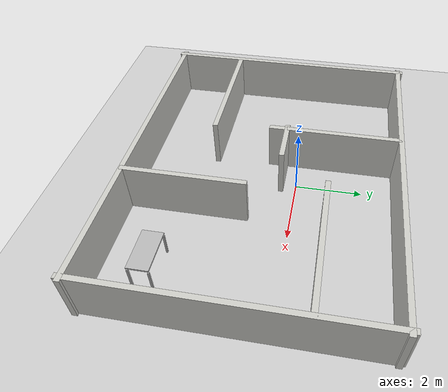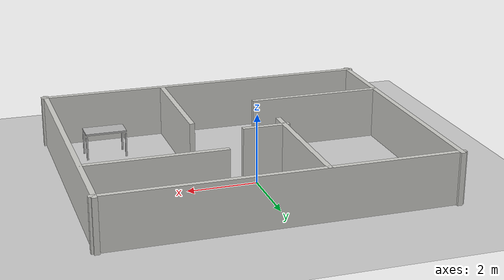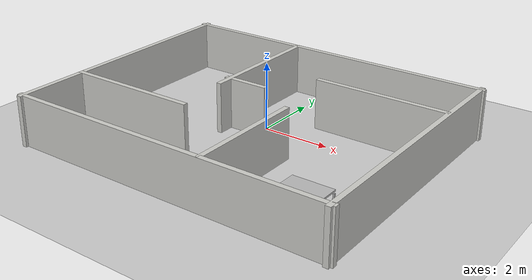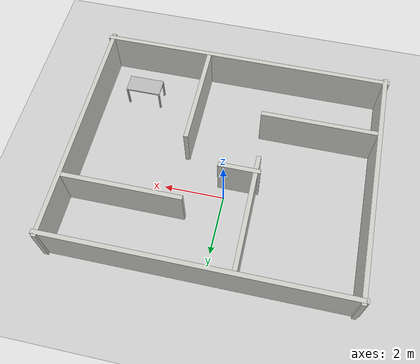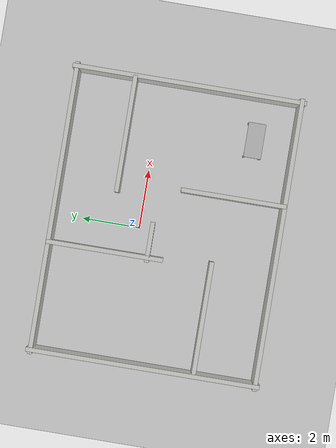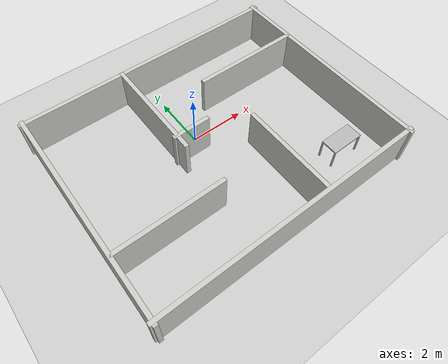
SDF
<sdf version="1.7">
 <world name="default">
  <light name="sun" type="directional">
   <pose>0 0 10 0 -0 0</pose>
   <diffuse>0.8 0.8 0.8 1</diffuse>
   <specular>0.2 0.2 0.2 1</specular>
   <attenuation>
    <range>1000</range>
    <constant>0.9</constant>
    <linear>0.01</linear>
    <quadratic>0.001</quadratic>
   </attenuation>
   <direction>-0.5 0.1 -0.9</direction>
   <spot><inner_angle>0</inner_angle><outer_angle>0</outer_angle><falloff>0</falloff></spot>
  </light>
  <model name="ground_plane">
   <static>1</static>
   <link name="link">
    <collision name="collision">
     <geometry><plane><normal>0 0 1</normal><size>100 100</size></plane></geometry>
     <surface>
      <contact><collide_bitmask>65535</collide_bitmask></contact>
      <friction><ode><mu>100</mu><mu2>50</mu2></ode></friction>
     </surface>
    </collision>
    <visual name="visual">
     <cast_shadows>0</cast_shadows>
     <geometry><plane><normal>0 0 1</normal><size>100 100</size></plane></geometry>
     <material>
      <script><uri>file://media/materials/scripts/gazebo.material</uri><name>Gazebo/Grey</name></script>
     </material>
    </visual>
   </link>
  </model>
  <gravity>0 0 -9.8</gravity>
  <magnetic_field>6e-06 2.3e-05 -4.2e-05</magnetic_field>
  <atmosphere type="adiabatic"/>
  <physics type="ode">
   <max_step_size>0.001</max_step_size>
   <real_time_factor>1</real_time_factor>
   <real_time_update_rate>1000</real_time_update_rate>
  </physics>
  <scene><ambient>0.4 0.4 0.4 1</ambient><background>0.7 0.7 0.7 1</background><shadows>1</shadows></scene>
  <spherical_coordinates>
   <surface_model>EARTH_WGS84</surface_model>
   <latitude_deg>0</latitude_deg>
   <longitude_deg>0</longitude_deg>
   <elevation>0</elevation>
   <heading_deg>0</heading_deg>
  </spherical_coordinates>
  <model name="bnt_partition1">
   <pose>0.200898 -0.36337 0 0 -0 0</pose>
   <link name="Wall_1">
    <collision name="Wall_1_Collision">
     <geometry><box><size>7.55 0.148333 1.5</size></box></geometry>
     <pose>0 0 0.75 0 -0 0</pose>
    </collision>
    <visual name="Wall_1_Visual">
     <pose>0 0 0.75 0 -0 0</pose>
     <geometry><box><size>8 0.15 1.5</size></box></geometry>
     <material>
      <script><uri>file://media/materials/scripts/gazebo.material</uri><name>Gazebo/CeilingTiled</name></script>
      <ambient>1 1 1 1</ambient>
     </material>
     <meta><layer>0</layer></meta>
    </visual>
    <pose>-4.855 -0.535 0 0 -0 -1.5708</pose>
   </link>
   <link name="Wall_11">
    <collision name="Wall_11_Collision">
     <geometry><box><size>3.704584 0.15 1.5</size></box></geometry>
     <pose>0 0 0.75 0 -0 0</pose>
    </collision>
    <visual name="Wall_11_Visual">
     <pose>0 0 0.75 0 -0 0</pose>
     <geometry><box><size>4 0.15 1.5</size></box></geometry>
     <material>
      <script><uri>file://media/materials/scripts/gazebo.material</uri><name>Gazebo/CeilingTiled</name></script>
      <ambient>1 1 1 1</ambient>
     </material>
     <meta><layer>0</layer></meta>
    </visual>
    <pose>-2.928542 -2.265 0 0 -0 0</pose>
   </link>
   <link name="Wall_13">
    <collision name="Wall_13_Collision">
     <geometry><box><size>4 0.1475 1.5</size></box></geometry>
     <pose>0 0 0.75 0 -0 0</pose>
    </collision>
    <visual name="Wall_13_Visual">
     <pose>0 0 0.75 0 -0 0</pose>
     <geometry><box><size>4 0.15 1.5</size></box></geometry>
     <material>
      <script><uri>file://media/materials/scripts/gazebo.material</uri><name>Gazebo/CeilingTiled</name></script>
      <ambient>1 1 1 1</ambient>
     </material>
     <meta><layer>0</layer></meta>
    </visual>
    <pose>-1.15 1.38625 0 0 -0 -1.5708</pose>
   </link>
   <link name="Wall_15">
    <collision name="Wall_15_Collision">
     <geometry><box><size>1.37625 0.15 1.5</size></box></geometry>
     <pose>0 0 0.75 0 -0 0</pose>
    </collision>
    <visual name="Wall_15_Visual">
     <pose>0 0.075 0.75 0 -0 0</pose>
     <geometry><box><size>1.37635 0.15 1.5</size></box></geometry>
     <material>
      <script><uri>file://media/materials/scripts/gazebo.material</uri><name>Gazebo/CeilingTiled</name></script>
      <ambient>1 1 1 1</ambient>
     </material>
     <meta><layer>0</layer></meta>
    </visual>
    <pose>-0.61375 0 0 0 -0 3.14159</pose>
   </link>
   <link name="Wall_17">
    <collision name="Wall_17_Collision">
     <geometry><box><size>3.985 0.15 1.5</size></box></geometry>
     <pose>0 0 0.75 0 -0 0</pose>
    </collision>
    <visual name="Wall_17_Visual">
     <pose>0 0 0.75 0 -0 0</pose>
     <geometry><box><size>4 0.15 1.5</size></box></geometry>
     <material>
      <script><uri>file://media/materials/scripts/gazebo.material</uri><name>Gazebo/CeilingTiled</name></script>
      <ambient>1 1 1 1</ambient>
     </material>
     <meta><layer>0</layer></meta>
    </visual>
    <pose>2.8725 1.3125 0 0 -0 3.14159</pose>
   </link>
   <link name="Wall_19">
    <collision name="Wall_19_Collision">
     <geometry><box><size>3.6 0.15 1.5</size></box></geometry>
     <pose>0 0 0.75 0 -0 0</pose>
    </collision>
    <visual name="Wall_19_Visual">
     <pose>0 0 0.75 0 -0 0</pose>
     <geometry><box><size>3.6 0.15 1.5</size></box></geometry>
     <material>
      <script><uri>file://media/materials/scripts/gazebo.material</uri><name>Gazebo/CeilingTiled</name></script>
      <ambient>1 1 1 1</ambient>
     </material>
     <meta><layer>0</layer></meta>
    </visual>
    <pose>1.31 -2.635 0 0 -0 1.5708</pose>
   </link>
   <link name="Wall_3">
    <collision name="Wall_3_Collision">
     <geometry><box><size>9.571667 0.15 1.5</size></box></geometry>
     <pose>0 0 0.75 0 -0 0</pose>
    </collision>
    <visual name="Wall_3_Visual">
     <pose>0 0 0.75 0 -0 0</pose>
     <geometry><box><size>10 0.15 1.5</size></box></geometry>
     <material>
      <script><uri>file://media/materials/scripts/gazebo.material</uri><name>Gazebo/CeilingTiled</name></script>
      <ambient>1 1 1 1</ambient>
     </material>
     <meta><layer>0</layer></meta>
    </visual>
    <pose>0.005 -4.385 0 0 -0 0</pose>
   </link>
   <link name="Wall_7">
    <collision name="Wall_7_Collision">
     <geometry><box><size>7.55 0.148333 1.5</size></box></geometry>
     <pose>0 0 0.75 0 -0 0</pose>
    </collision>
    <visual name="Wall_7_Visual">
     <pose>0 0 0.75 0 -0 0</pose>
     <geometry><box><size>8 0.15 1.5</size></box></geometry>
     <material>
      <script><uri>file://media/materials/scripts/gazebo.material</uri><name>Gazebo/CeilingTiled</name></script>
      <ambient>1 1 1 1</ambient>
     </material>
     <meta><layer>0</layer></meta>
    </visual>
    <pose>4.865 -0.535 0 0 -0 1.5708</pose>
   </link>
   <link name="Wall_9">
    <collision name="Wall_9_Collision">
     <geometry><box><size>9.571667 0.15 1.5</size></box></geometry>
     <pose>0 0 0.75 0 -0 0</pose>
    </collision>
    <visual name="Wall_9_Visual">
     <pose>0 0 0.75 0 -0 0</pose>
     <geometry><box><size>10 0.15 1.5</size></box></geometry>
     <material>
      <script><uri>file://media/materials/scripts/gazebo.material</uri><name>Gazebo/CeilingTiled</name></script>
      <ambient>1 1 1 1</ambient>
     </material>
     <meta><layer>0</layer></meta>
    </visual>
    <pose>0.005 3.315 0 0 -0 0</pose>
   </link>
   <static>1</static>
  </model>
  <model name="desk_bottom_right">
   <static>true</static>
   <pose>3.590834 -3.41 0 0 0 0</pose>
   <link name="tabletop">
    <pose>0 0 0.775 0 0 0</pose>
    <collision name="tabletop_collision"><geometry><box><size>1.2 0.6 0.05</size></box></geometry></collision>
    <visual name="tabletop_visual"><geometry><box><size>1.2 0.6 0.05</size></box></geometry></visual>
   </link>
   <link name="leg1">
    <pose>0.575 0.275 0.35 0 0 0</pose>
    <collision name="leg1_collision"><geometry><box><size>0.05 0.05 0.7</size></box></geometry></collision>
    <visual name="leg1_visual"><geometry><box><size>0.05 0.05 0.7</size></box></geometry></visual>
   </link>
   <link name="leg2">
    <pose>-0.575 0.275 0.35 0 0 0</pose>
    <collision name="leg2_collision"><geometry><box><size>0.05 0.05 0.7</size></box></geometry></collision>
    <visual name="leg2_visual"><geometry><box><size>0.05 0.05 0.7</size></box></geometry></visual>
   </link>
   <link name="leg3">
    <pose>0.575 -0.275 0.35 0 0 0</pose>
    <collision name="leg3_collision"><geometry><box><size>0.05 0.05 0.7</size></box></geometry></collision>
    <visual name="leg3_visual"><geometry><box><size>0.05 0.05 0.7</size></box></geometry></visual>
   </link>
   <link name="leg4">
    <pose>-0.575 -0.275 0.35 0 0 0</pose>
    <collision name="leg4_collision"><geometry><box><size>0.05 0.05 0.7</size></box></geometry></collision>
    <visual name="leg4_visual"><geometry><box><size>0.05 0.05 0.7</size></box></geometry></visual>
   </link>
  </model>
 </world>
</sdf>
